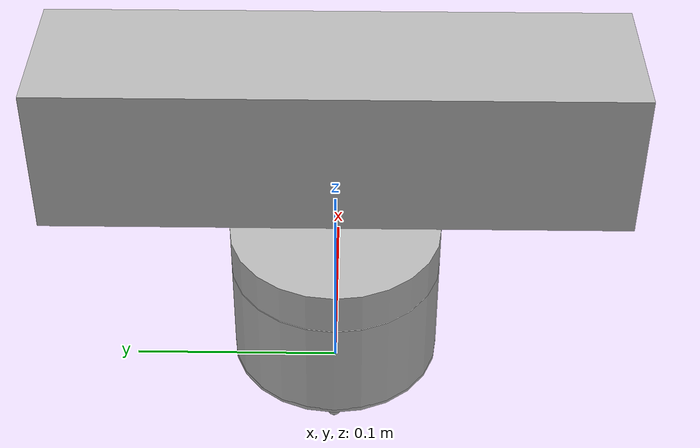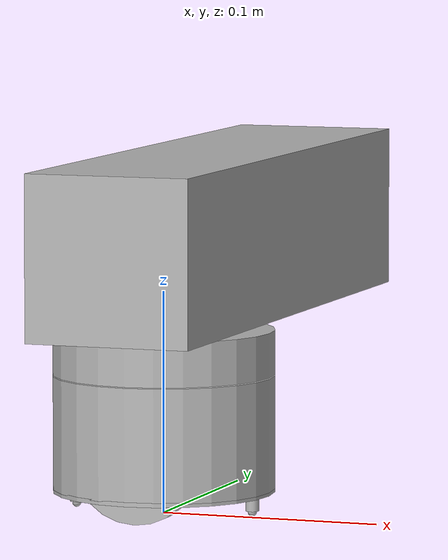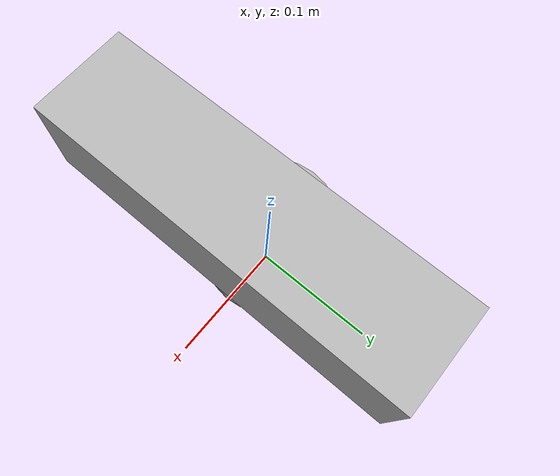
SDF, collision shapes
<?xml version='1.0'?>
<sdf version='1.4'>
  <model name="AMiRo Kinect">
    <static>false</static>

    <include>
        <uri>model://AMiRo</uri>
        <pose>0 0 0 0 0 0</pose>
    </include>

    <include>
      <uri>model://kinect</uri>
      <pose>.025 0 0.128 0 0 0</pose>
    </include>
    <joint name="kinect_joint" type="revolute">
      <child>kinect::link</child>
      <parent>AMiRo::chassis</parent>
      <axis>
        <xyz>0 0 1</xyz>
        <limit>
          <upper>0</upper>
          <lower>0</lower>
        </limit>
      </axis>
    </joint>

  </model>
</sdf>

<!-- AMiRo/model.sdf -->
<sdf version='1.4'>
  <model name="AMiRo">
    <static>false</static>
      <link name='chassis'>
        <inertial>
          <mass>10.0</mass>
          <inertia>
          <ixx>0.3333</ixx>
          <ixy>0.0</ixy>
          <ixz>0.0</ixz>
          <iyy>0.3333</iyy>
          <iyz>0.0</iyz>
          <izz>0.05</izz>
          </inertia>
        </inertial>
        <velocity_decay>
          <linear>0</linear>
          <angular>0</angular>
        </velocity_decay>

        <collision name='collision_DiWheelDrive'>
          <pose>0 0 .011 0 0 0</pose>
          <geometry>
            <cylinder>
              <radius>.05</radius>
              <length>.002</length>
            </cylinder>
          </geometry>
        </collision>
        <visual name='visual_DiWheelDrive'>
          <pose>0 0 .011 0 0 0</pose>
          <geometry>
            <cylinder>
              <radius>.05</radius>
              <length>.002</length>
            </cylinder>
          </geometry>
        </visual>

        <collision name='collision_SensorRing'>
          <pose>0 0 .037 0 0 0</pose>
          <geometry>
            <cylinder>
              <radius>.05</radius>
              <length>.051</length>
            </cylinder>
          </geometry>
        </collision>
        <visual name='visual_SensorRing'>
          <pose>0 0 .037 0 0 0</pose>
          <geometry>
            <cylinder>
              <radius>.05</radius>
              <length>.051</length>
            </cylinder>
          </geometry>
        </visual>

        <collision name='collision_Hat'>
          <pose>0 0 .073 0 0 0</pose>
          <geometry>
            <cylinder>
              <radius>.05</radius>
              <length>.02</length>
            </cylinder>
          </geometry>
        </collision>
        <visual name='visual_Hat'>
          <pose>0 0 .073 0 0 0</pose>
          <geometry>
            <cylinder>
              <radius>.05</radius>
              <length>.02</length>
            </cylinder>
          </geometry>
        </visual>

        <collision name="collision_sph_caster_front">
        <pose>0.042 0 0.0025 0 0 0</pose>
        <laser_retro>0</laser_retro>
        <geometry>
          <sphere>
            <radius>0.002</radius>
          </sphere>
        </geometry>
        <surface>
          <friction>
            <ode>
              <mu>0.01</mu>
              <mu2>0.01</mu2>
              <fdir1> 0 0 0</fdir1>
              <slip1>0</slip1>
              <slip2>0</slip2>
            </ode>
          </friction>
          <bounce>
            <restitution_coefficient>0</restitution_coefficient>
            <threshold>100000</threshold>
          </bounce>
          <contact>
            <ode>
              <soft_cfm>0</soft_cfm>
              <soft_erp>0.2</soft_erp>
              <kp>1000000000000</kp>
              <kd>1</kd>
              <max_vel>100</max_vel>
              <min_depth>0.001</min_depth>
            </ode>
          </contact>
        </surface>
        </collision>
        <visual name='visual_sph_caster_front'>
          <pose>0.042 0 0.0025 0 0 0</pose>
          <geometry>
            <sphere>
              <radius>.002</radius>
            </sphere>
          </geometry>
        </visual>

        <collision name='collision_cyl_caster_front'>
          <pose>0.042 0 0.0065 0 0 0</pose>
          <geometry>
            <cylinder>
              <radius>.003</radius>
              <length>.007</length>
            </cylinder>
          </geometry>
          <surface>
            <friction>
              <ode>
                <mu>0</mu>
                <mu2>0</mu2>
              </ode>
              <bullet>
                <friction>0</friction>
                <friction2>0</friction2>
              </bullet>
            </friction>
            <contact>
              <collide_without_contact>0</collide_without_contact>
            </contact>
          </surface>
        </collision>
        <visual name='visual_cyl_caster_front'>
          <pose>0.042 0 0.0065 0 0 0</pose>
          <geometry>
            <cylinder>
              <radius>.003</radius>
              <length>.007</length>
            </cylinder>
          </geometry>
        </visual>

        <collision name='collision_sph_caster_back'>
          <pose>-0.042 0 0.0025 0 0 0</pose>
          <geometry>
            <sphere>
              <radius>.002</radius>
            </sphere>
          </geometry>
        <surface>
          <friction>
            <ode>
              <mu>0.01</mu>
              <mu2>0.01</mu2>
              <fdir1> 0 0 0</fdir1>
              <slip1>0</slip1>
              <slip2>0</slip2>
            </ode>
          </friction>
          <bounce>
            <restitution_coefficient>0</restitution_coefficient>
            <threshold>100000</threshold>
          </bounce>
          <contact>
            <ode>
              <soft_cfm>0</soft_cfm>
              <soft_erp>0.2</soft_erp>
              <kp>1000000000000</kp>
              <kd>1</kd>
              <max_vel>100</max_vel>
              <min_depth>0.001</min_depth>
            </ode>
          </contact>
        </surface>
        </collision>
        <visual name='visual_sph_caster_back'>
          <pose>-0.042 0 0.0025 0 0 0</pose>
          <geometry>
            <sphere>
              <radius>.002</radius>
            </sphere>
          </geometry>
        </visual>

        <collision name='collision_cyl_caster_back'>
          <pose>-0.042 0 0.0065 0 0 0</pose>
          <geometry>
            <cylinder>
              <radius>.003</radius>
              <length>.007</length>
            </cylinder>
          </geometry>
        </collision>
        <visual name='visual_cyl_caster_back'>
          <pose>-0.042 0 0.0065 0 0 0</pose>
          <geometry>
            <cylinder>
              <radius>.003</radius>
              <length>.007</length>
            </cylinder>
          </geometry>
        </visual>

      </link>

      <link name="left_wheel">
        <pose>0.0 0.035 0.030 0 1.5707 1.5707</pose>
        <collision name="collision">
          <geometry>
            <cylinder>
              <radius>.03</radius>
              <length>.006</length>
            </cylinder>
          </geometry>
        </collision>
        <visual name="visual">
          <geometry>
            <cylinder>
              <radius>.03</radius>
              <length>.006</length>
            </cylinder>
          </geometry>
        </visual>
      </link>

      <link name="right_wheel">
        <pose>0.0 -0.035 0.03 0 1.5707 1.5707</pose>
        <collision name="collision">
          <geometry>
            <cylinder>
              <radius>.03</radius>
              <length>.006</length>
            </cylinder>
          </geometry>
        </collision>
        <visual name="visual">
          <geometry>
            <cylinder>
              <radius>.03</radius>
              <length>.006</length>
            </cylinder>
          </geometry>
        </visual>
      </link>

      <joint type="revolute" name="left_wheel_hinge">
        <pose>0 0 0 0 0 0</pose>
        <child>left_wheel</child>
        <parent>chassis</parent>
        <axis>
          <xyz>0 1 0</xyz>
        </axis>
      </joint>
      <joint type="revolute" name="right_wheel_hinge">
        <pose>0 0 0 0 0 0</pose>
        <child>right_wheel</child>
        <parent>chassis</parent>
        <axis>
          <xyz>0 1 0</xyz>
        </axis>
      </joint>
    <plugin name="model_push" filename="libgazebo_rsb_wheel.so"/>
  </model>
</sdf>

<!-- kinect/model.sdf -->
<sdf version="1.5">
  <model name="kinect">
    <pose>0 0 0.036 0 0 0</pose>
    <link name="link">
      <inertial>
        <mass>0.1</mass>
      </inertial>
      <collision name="collision">
        <geometry>
          <box>
            <size>0.073000 0.276000 0.072000</size>
          </box>
        </geometry>
      </collision>
      <visual name="visual">
        <geometry>
          <mesh>
            <uri>model://../model_source/models/kinect/meshes/kinect.dae</uri>
          </mesh>
        </geometry>
      </visual>
      <sensor name="camera" type="depth">
        <update_rate>20</update_rate>
        <camera>
          <horizontal_fov>1.047198</horizontal_fov>
          <image>
            <width>640</width>
            <height>480</height>
            <format>R8G8B8</format>
          </image>
          <clip>
            <near>0.05</near>
            <far>3</far>
          </clip>
        </camera>
      </sensor>
    </link>
  </model>
</sdf>
